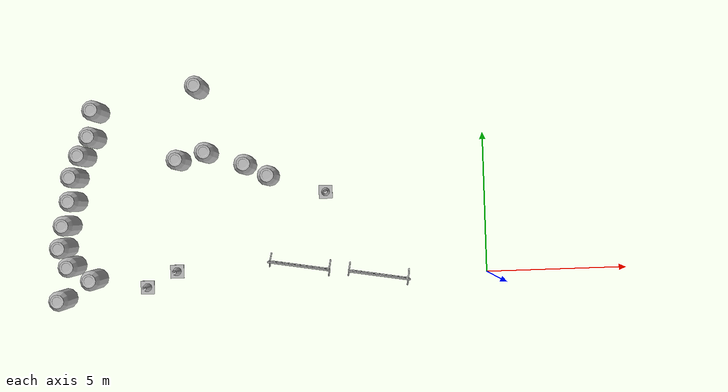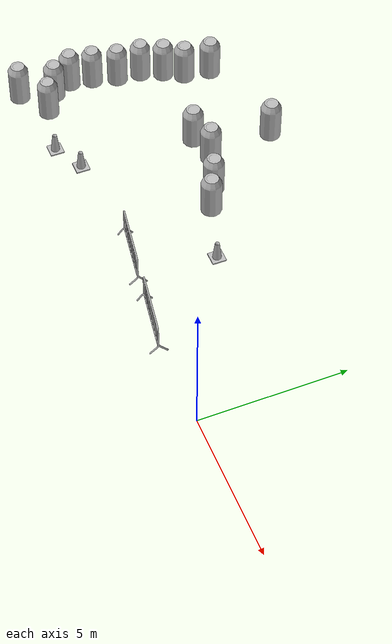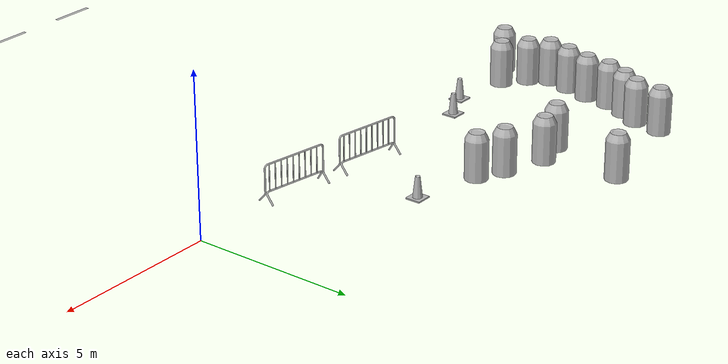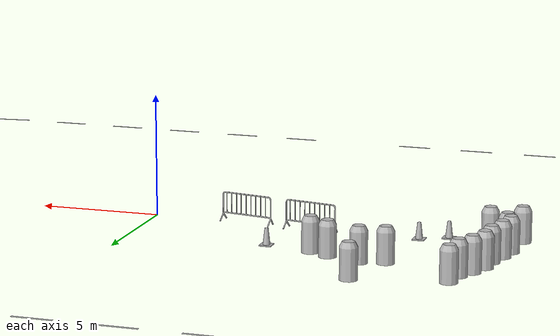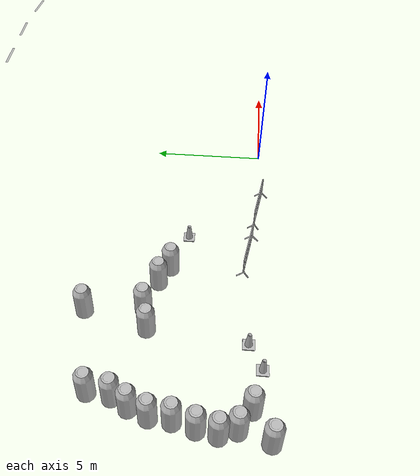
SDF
<sdf version="1.7">
 <world name="default">
  <model name="aws_robomaker_racetrack_CrashworthBucket_01_00">
   <frame name="aws_CrashworthBucket_01::__model__" attached_to="aws_CrashworthBucket_01::body">
    <pose relative_to="__model__">0 0 0 0 -0 0</pose>
   </frame>
   <link name="aws_CrashworthBucket_01::body">
    <pose relative_to="aws_CrashworthBucket_01::__model__">0 0 0 0 -0 0</pose>
    <inertial>
     <mass>5</mass>
     <inertia><ixx>1</ixx><ixy>0</ixy><ixz>0</ixz><iyy>1</iyy><iyz>0</iyz><izz>1</izz></inertia>
    </inertial>
    <visual name="visual">
     <geometry>
      <mesh>
       <uri>file://models/aws_robomaker_racetrack_CrashworthBucket_01/meshes/aws_CrashworthBucket_01_visual.DAE</uri>
      </mesh>
     </geometry>
     <material><shader type="pixel"><normal_map>__default__</normal_map></shader></material>
     <meta><layer>0</layer></meta>
    </visual>
    <collision name="collision_0">
     <geometry>
      <mesh>
       <uri>file://models/aws_robomaker_racetrack_CrashworthBucket_01/meshes/aws_CrashworthBucket_01_collision.DAE</uri>
       <scale>1 1 1</scale>
      </mesh>
     </geometry>
     <surface>
      <friction>
       <ode><mu>1</mu><mu2>1</mu2><fdir1>0 0 0</fdir1><slip1>0</slip1><slip2>0</slip2></ode>
       <torsional>
        <coefficient>1</coefficient>
        <patch_radius>0</patch_radius>
        <surface_radius>0</surface_radius>
        <use_patch_radius>1</use_patch_radius>
        <ode><slip>0</slip></ode>
       </torsional>
      </friction>
      <bounce><restitution_coefficient>0</restitution_coefficient><threshold>1e+06</threshold></bounce>
      <contact>
       <collide_without_contact>0</collide_without_contact>
       <collide_without_contact_bitmask>1</collide_without_contact_bitmask>
       <collide_bitmask>1</collide_bitmask>
       <ode>
        <soft_cfm>0</soft_cfm>
        <soft_erp>0.2</soft_erp>
        <kp>1e+13</kp>
        <kd>1</kd>
        <max_vel>0.01</max_vel>
        <min_depth>0</min_depth>
       </ode>
       <bullet>
        <split_impulse>1</split_impulse>
        <split_impulse_penetration_threshold>-0.01</split_impulse_penetration_threshold>
        <soft_cfm>0</soft_cfm>
        <soft_erp>0.2</soft_erp>
        <kp>1e+13</kp>
        <kd>1</kd>
       </bullet>
      </contact>
     </surface>
    </collision>
   </link>
   <static>1</static>
   <pose>-8.47522 4.09403 0.054 0 -0 0</pose>
  </model>
  <model name="aws_robomaker_racetrack_CrashworthBucket_01_01">
   <frame name="aws_CrashworthBucket_01::__model__" attached_to="aws_CrashworthBucket_01::body">
    <pose relative_to="__model__">0 0 0 0 -0 0</pose>
   </frame>
   <link name="aws_CrashworthBucket_01::body">
    <pose relative_to="aws_CrashworthBucket_01::__model__">0 0 0 0 -0 0</pose>
    <inertial>
     <mass>5</mass>
     <inertia><ixx>1</ixx><ixy>0</ixy><ixz>0</ixz><iyy>1</iyy><iyz>0</iyz><izz>1</izz></inertia>
    </inertial>
    <visual name="visual">
     <geometry>
      <mesh>
       <uri>file://models/aws_robomaker_racetrack_CrashworthBucket_01/meshes/aws_CrashworthBucket_01_visual.DAE</uri>
      </mesh>
     </geometry>
     <material><shader type="pixel"><normal_map>__default__</normal_map></shader></material>
     <meta><layer>0</layer></meta>
    </visual>
    <collision name="collision_0">
     <geometry>
      <mesh>
       <uri>file://models/aws_robomaker_racetrack_CrashworthBucket_01/meshes/aws_CrashworthBucket_01_collision.DAE</uri>
       <scale>1 1 1</scale>
      </mesh>
     </geometry>
     <surface>
      <friction>
       <ode><mu>1</mu><mu2>1</mu2><fdir1>0 0 0</fdir1><slip1>0</slip1><slip2>0</slip2></ode>
       <torsional>
        <coefficient>1</coefficient>
        <patch_radius>0</patch_radius>
        <surface_radius>0</surface_radius>
        <use_patch_radius>1</use_patch_radius>
        <ode><slip>0</slip></ode>
       </torsional>
      </friction>
      <bounce><restitution_coefficient>0</restitution_coefficient><threshold>1e+06</threshold></bounce>
      <contact>
       <collide_without_contact>0</collide_without_contact>
       <collide_without_contact_bitmask>1</collide_without_contact_bitmask>
       <collide_bitmask>1</collide_bitmask>
       <ode>
        <soft_cfm>0</soft_cfm>
        <soft_erp>0.2</soft_erp>
        <kp>1e+13</kp>
        <kd>1</kd>
        <max_vel>0.01</max_vel>
        <min_depth>0</min_depth>
       </ode>
       <bullet>
        <split_impulse>1</split_impulse>
        <split_impulse_penetration_threshold>-0.01</split_impulse_penetration_threshold>
        <soft_cfm>0</soft_cfm>
        <soft_erp>0.2</soft_erp>
        <kp>1e+13</kp>
        <kd>1</kd>
       </bullet>
      </contact>
     </surface>
    </collision>
   </link>
   <static>1</static>
   <pose>-7.67012 3.67698 0.054 0 -0 0</pose>
  </model>
  <model name="aws_robomaker_racetrack_CrashworthBucket_01_03">
   <frame name="aws_CrashworthBucket_01::__model__" attached_to="aws_CrashworthBucket_01::body">
    <pose relative_to="__model__">0 0 0 0 -0 0</pose>
   </frame>
   <link name="aws_CrashworthBucket_01::body">
    <pose relative_to="aws_CrashworthBucket_01::__model__">0 0 0 0 -0 0</pose>
    <inertial>
     <mass>5</mass>
     <inertia><ixx>1</ixx><ixy>0</ixy><ixz>0</ixz><iyy>1</iyy><iyz>0</iyz><izz>1</izz></inertia>
    </inertial>
    <visual name="visual">
     <geometry>
      <mesh>
       <uri>file://models/aws_robomaker_racetrack_CrashworthBucket_01/meshes/aws_CrashworthBucket_01_visual.DAE</uri>
      </mesh>
     </geometry>
     <material><shader type="pixel"><normal_map>__default__</normal_map></shader></material>
     <meta><layer>0</layer></meta>
    </visual>
    <collision name="collision_0">
     <geometry>
      <mesh>
       <uri>file://models/aws_robomaker_racetrack_CrashworthBucket_01/meshes/aws_CrashworthBucket_01_collision.DAE</uri>
       <scale>1 1 1</scale>
      </mesh>
     </geometry>
     <surface>
      <friction>
       <ode><mu>1</mu><mu2>1</mu2><fdir1>0 0 0</fdir1><slip1>0</slip1><slip2>0</slip2></ode>
       <torsional>
        <coefficient>1</coefficient>
        <patch_radius>0</patch_radius>
        <surface_radius>0</surface_radius>
        <use_patch_radius>1</use_patch_radius>
        <ode><slip>0</slip></ode>
       </torsional>
      </friction>
      <bounce><restitution_coefficient>0</restitution_coefficient><threshold>1e+06</threshold></bounce>
      <contact>
       <collide_without_contact>0</collide_without_contact>
       <collide_without_contact_bitmask>1</collide_without_contact_bitmask>
       <collide_bitmask>1</collide_bitmask>
       <ode>
        <soft_cfm>0</soft_cfm>
        <soft_erp>0.2</soft_erp>
        <kp>1e+13</kp>
        <kd>1</kd>
        <max_vel>0.01</max_vel>
        <min_depth>0</min_depth>
       </ode>
       <bullet>
        <split_impulse>1</split_impulse>
        <split_impulse_penetration_threshold>-0.01</split_impulse_penetration_threshold>
        <soft_cfm>0</soft_cfm>
        <soft_erp>0.2</soft_erp>
        <kp>1e+13</kp>
        <kd>1</kd>
       </bullet>
      </contact>
     </surface>
    </collision>
   </link>
   <static>1</static>
   <pose>-13.6938 6.13266 0.054 0 -0 0</pose>
  </model>
  <model name="aws_robomaker_racetrack_CrashworthBucket_01_24">
   <frame name="aws_CrashworthBucket_01::__model__" attached_to="aws_CrashworthBucket_01::body">
    <pose relative_to="__model__">0 0 0 0 -0 0</pose>
   </frame>
   <link name="aws_CrashworthBucket_01::body">
    <pose relative_to="aws_CrashworthBucket_01::__model__">0 0 0 0 -0 0</pose>
    <inertial>
     <mass>5</mass>
     <inertia><ixx>1</ixx><ixy>0</ixy><ixz>0</ixz><iyy>1</iyy><iyz>0</iyz><izz>1</izz></inertia>
    </inertial>
    <visual name="visual">
     <geometry>
      <mesh>
       <uri>file://models/aws_robomaker_racetrack_CrashworthBucket_01/meshes/aws_CrashworthBucket_01_visual.DAE</uri>
      </mesh>
     </geometry>
     <material><shader type="pixel"><normal_map>__default__</normal_map></shader></material>
     <meta><layer>0</layer></meta>
    </visual>
    <collision name="collision_0">
     <geometry>
      <mesh>
       <uri>file://models/aws_robomaker_racetrack_CrashworthBucket_01/meshes/aws_CrashworthBucket_01_collision.DAE</uri>
       <scale>1 1 1</scale>
      </mesh>
     </geometry>
     <surface>
      <friction>
       <ode><mu>1</mu><mu2>1</mu2><fdir1>0 0 0</fdir1><slip1>0</slip1><slip2>0</slip2></ode>
       <torsional>
        <coefficient>1</coefficient>
        <patch_radius>0</patch_radius>
        <surface_radius>0</surface_radius>
        <use_patch_radius>1</use_patch_radius>
        <ode><slip>0</slip></ode>
       </torsional>
      </friction>
      <bounce><restitution_coefficient>0</restitution_coefficient><threshold>1e+06</threshold></bounce>
      <contact>
       <collide_without_contact>0</collide_without_contact>
       <collide_without_contact_bitmask>1</collide_without_contact_bitmask>
       <collide_bitmask>1</collide_bitmask>
       <ode>
        <soft_cfm>0</soft_cfm>
        <soft_erp>0.2</soft_erp>
        <kp>1e+13</kp>
        <kd>1</kd>
        <max_vel>0.01</max_vel>
        <min_depth>0</min_depth>
       </ode>
       <bullet>
        <split_impulse>1</split_impulse>
        <split_impulse_penetration_threshold>-0.01</split_impulse_penetration_threshold>
        <soft_cfm>0</soft_cfm>
        <soft_erp>0.2</soft_erp>
        <kp>1e+13</kp>
        <kd>1</kd>
       </bullet>
      </contact>
     </surface>
    </collision>
   </link>
   <static>1</static>
   <pose>-15.0558 -0.45872 0 0 -0 0</pose>
  </model>
  <model name="aws_robomaker_racetrack_CrashworthBucket_01_44">
   <frame name="aws_CrashworthBucket_01::__model__" attached_to="aws_CrashworthBucket_01::body">
    <pose relative_to="__model__">0 0 0 0 -0 0</pose>
   </frame>
   <link name="aws_CrashworthBucket_01::body">
    <pose relative_to="aws_CrashworthBucket_01::__model__">0 0 0 0 -0 0</pose>
    <inertial>
     <mass>5</mass>
     <inertia><ixx>1</ixx><ixy>0</ixy><ixz>0</ixz><iyy>1</iyy><iyz>0</iyz><izz>1</izz></inertia>
    </inertial>
    <visual name="visual">
     <geometry>
      <mesh>
       <uri>file://models/aws_robomaker_racetrack_CrashworthBucket_01/meshes/aws_CrashworthBucket_01_visual.DAE</uri>
      </mesh>
     </geometry>
     <material><shader type="pixel"><normal_map>__default__</normal_map></shader></material>
     <meta><layer>0</layer></meta>
    </visual>
    <collision name="collision_0">
     <geometry>
      <mesh>
       <uri>file://models/aws_robomaker_racetrack_CrashworthBucket_01/meshes/aws_CrashworthBucket_01_collision.DAE</uri>
       <scale>1 1 1</scale>
      </mesh>
     </geometry>
     <surface>
      <friction>
       <ode><mu>1</mu><mu2>1</mu2><fdir1>0 0 0</fdir1><slip1>0</slip1><slip2>0</slip2></ode>
       <torsional>
        <coefficient>1</coefficient>
        <patch_radius>0</patch_radius>
        <surface_radius>0</surface_radius>
        <use_patch_radius>1</use_patch_radius>
        <ode><slip>0</slip></ode>
       </torsional>
      </friction>
      <bounce><restitution_coefficient>0</restitution_coefficient><threshold>1e+06</threshold></bounce>
      <contact>
       <collide_without_contact>0</collide_without_contact>
       <collide_without_contact_bitmask>1</collide_without_contact_bitmask>
       <collide_bitmask>1</collide_bitmask>
       <ode>
        <soft_cfm>0</soft_cfm>
        <soft_erp>0.2</soft_erp>
        <kp>1e+13</kp>
        <kd>1</kd>
        <max_vel>0.01</max_vel>
        <min_depth>0</min_depth>
       </ode>
       <bullet>
        <split_impulse>1</split_impulse>
        <split_impulse_penetration_threshold>-0.01</split_impulse_penetration_threshold>
        <soft_cfm>0</soft_cfm>
        <soft_erp>0.2</soft_erp>
        <kp>1e+13</kp>
        <kd>1</kd>
       </bullet>
      </contact>
     </surface>
    </collision>
   </link>
   <static>1</static>
   <pose>-13.8311 5.21601 0.054 0 -0 0</pose>
  </model>
  <model name="aws_robomaker_racetrack_CrashworthBucket_01_51">
   <frame name="aws_CrashworthBucket_01::__model__" attached_to="aws_CrashworthBucket_01::body">
    <pose relative_to="__model__">0 0 0 0 -0 0</pose>
   </frame>
   <link name="aws_CrashworthBucket_01::body">
    <pose relative_to="aws_CrashworthBucket_01::__model__">0 0 0 0 -0 0</pose>
    <inertial>
     <mass>5</mass>
     <inertia><ixx>1</ixx><ixy>0</ixy><ixz>0</ixz><iyy>1</iyy><iyz>0</iyz><izz>1</izz></inertia>
    </inertial>
    <visual name="visual">
     <geometry>
      <mesh>
       <uri>file://models/aws_robomaker_racetrack_CrashworthBucket_01/meshes/aws_CrashworthBucket_01_visual.DAE</uri>
      </mesh>
     </geometry>
     <material><shader type="pixel"><normal_map>__default__</normal_map></shader></material>
     <meta><layer>0</layer></meta>
    </visual>
    <collision name="collision_0">
     <geometry>
      <mesh>
       <uri>file://models/aws_robomaker_racetrack_CrashworthBucket_01/meshes/aws_CrashworthBucket_01_collision.DAE</uri>
       <scale>1 1 1</scale>
      </mesh>
     </geometry>
     <surface>
      <friction>
       <ode><mu>1</mu><mu2>1</mu2><fdir1>0 0 0</fdir1><slip1>0</slip1><slip2>0</slip2></ode>
       <torsional>
        <coefficient>1</coefficient>
        <patch_radius>0</patch_radius>
        <surface_radius>0</surface_radius>
        <use_patch_radius>1</use_patch_radius>
        <ode><slip>0</slip></ode>
       </torsional>
      </friction>
      <bounce><restitution_coefficient>0</restitution_coefficient><threshold>1e+06</threshold></bounce>
      <contact>
       <collide_without_contact>0</collide_without_contact>
       <collide_without_contact_bitmask>1</collide_without_contact_bitmask>
       <collide_bitmask>1</collide_bitmask>
       <ode>
        <soft_cfm>0</soft_cfm>
        <soft_erp>0.2</soft_erp>
        <kp>1e+13</kp>
        <kd>1</kd>
        <max_vel>0.01</max_vel>
        <min_depth>0</min_depth>
       </ode>
       <bullet>
        <split_impulse>1</split_impulse>
        <split_impulse_penetration_threshold>-0.01</split_impulse_penetration_threshold>
        <soft_cfm>0</soft_cfm>
        <soft_erp>0.2</soft_erp>
        <kp>1e+13</kp>
        <kd>1</kd>
       </bullet>
      </contact>
     </surface>
    </collision>
   </link>
   <static>1</static>
   <pose>-9.83411 4.55632 0.054 0 -0 0</pose>
  </model>
  <model name="aws_robomaker_racetrack_CrashworthBucket_01_52">
   <frame name="aws_CrashworthBucket_01::__model__" attached_to="aws_CrashworthBucket_01::body">
    <pose relative_to="__model__">0 0 0 0 -0 0</pose>
   </frame>
   <link name="aws_CrashworthBucket_01::body">
    <pose relative_to="aws_CrashworthBucket_01::__model__">0 0 0 0 -0 0</pose>
    <inertial>
     <mass>5</mass>
     <inertia><ixx>1</ixx><ixy>0</ixy><ixz>0</ixz><iyy>1</iyy><iyz>0</iyz><izz>1</izz></inertia>
    </inertial>
    <visual name="visual">
     <geometry>
      <mesh>
       <uri>file://models/aws_robomaker_racetrack_CrashworthBucket_01/meshes/aws_CrashworthBucket_01_visual.DAE</uri>
      </mesh>
     </geometry>
     <material><shader type="pixel"><normal_map>__default__</normal_map></shader></material>
     <meta><layer>0</layer></meta>
    </visual>
    <collision name="collision_0">
     <geometry>
      <mesh>
       <uri>file://models/aws_robomaker_racetrack_CrashworthBucket_01/meshes/aws_CrashworthBucket_01_collision.DAE</uri>
       <scale>1 1 1</scale>
      </mesh>
     </geometry>
     <surface>
      <friction>
       <ode><mu>1</mu><mu2>1</mu2><fdir1>0 0 0</fdir1><slip1>0</slip1><slip2>0</slip2></ode>
       <torsional>
        <coefficient>1</coefficient>
        <patch_radius>0</patch_radius>
        <surface_radius>0</surface_radius>
        <use_patch_radius>1</use_patch_radius>
        <ode><slip>0</slip></ode>
       </torsional>
      </friction>
      <bounce><restitution_coefficient>0</restitution_coefficient><threshold>1e+06</threshold></bounce>
      <contact>
       <collide_without_contact>0</collide_without_contact>
       <collide_without_contact_bitmask>1</collide_without_contact_bitmask>
       <collide_bitmask>1</collide_bitmask>
       <ode>
        <soft_cfm>0</soft_cfm>
        <soft_erp>0.2</soft_erp>
        <kp>1e+13</kp>
        <kd>1</kd>
        <max_vel>0.01</max_vel>
        <min_depth>0</min_depth>
       </ode>
       <bullet>
        <split_impulse>1</split_impulse>
        <split_impulse_penetration_threshold>-0.01</split_impulse_penetration_threshold>
        <soft_cfm>0</soft_cfm>
        <soft_erp>0.2</soft_erp>
        <kp>1e+13</kp>
        <kd>1</kd>
       </bullet>
      </contact>
     </surface>
    </collision>
   </link>
   <static>1</static>
   <pose>-10.8194 4.31922 0.054 0 -0 0</pose>
  </model>
  <model name="aws_robomaker_racetrack_CrashworthBucket_01_54">
   <frame name="aws_CrashworthBucket_01::__model__" attached_to="aws_CrashworthBucket_01::body">
    <pose relative_to="__model__">0 0 0 0 -0 0</pose>
   </frame>
   <link name="aws_CrashworthBucket_01::body">
    <pose relative_to="aws_CrashworthBucket_01::__model__">0 0 0 0 -0 0</pose>
    <inertial>
     <mass>5</mass>
     <inertia><ixx>1</ixx><ixy>0</ixy><ixz>0</ixz><iyy>1</iyy><iyz>0</iyz><izz>1</izz></inertia>
    </inertial>
    <visual name="visual">
     <geometry>
      <mesh>
       <uri>file://models/aws_robomaker_racetrack_CrashworthBucket_01/meshes/aws_CrashworthBucket_01_visual.DAE</uri>
      </mesh>
     </geometry>
     <material><shader type="pixel"><normal_map>__default__</normal_map></shader></material>
     <meta><layer>0</layer></meta>
    </visual>
    <collision name="collision_0">
     <geometry>
      <mesh>
       <uri>file://models/aws_robomaker_racetrack_CrashworthBucket_01/meshes/aws_CrashworthBucket_01_collision.DAE</uri>
       <scale>1 1 1</scale>
      </mesh>
     </geometry>
     <surface>
      <friction>
       <ode><mu>1</mu><mu2>1</mu2><fdir1>0 0 0</fdir1><slip1>0</slip1><slip2>0</slip2></ode>
       <torsional>
        <coefficient>1</coefficient>
        <patch_radius>0</patch_radius>
        <surface_radius>0</surface_radius>
        <use_patch_radius>1</use_patch_radius>
        <ode><slip>0</slip></ode>
       </torsional>
      </friction>
      <bounce><restitution_coefficient>0</restitution_coefficient><threshold>1e+06</threshold></bounce>
      <contact>
       <collide_without_contact>0</collide_without_contact>
       <collide_without_contact_bitmask>1</collide_without_contact_bitmask>
       <collide_bitmask>1</collide_bitmask>
       <ode>
        <soft_cfm>0</soft_cfm>
        <soft_erp>0.2</soft_erp>
        <kp>1e+13</kp>
        <kd>1</kd>
        <max_vel>0.01</max_vel>
        <min_depth>0</min_depth>
       </ode>
       <bullet>
        <split_impulse>1</split_impulse>
        <split_impulse_penetration_threshold>-0.01</split_impulse_penetration_threshold>
        <soft_cfm>0</soft_cfm>
        <soft_erp>0.2</soft_erp>
        <kp>1e+13</kp>
        <kd>1</kd>
       </bullet>
      </contact>
     </surface>
    </collision>
   </link>
   <static>1</static>
   <pose>-10.1026 6.87186 0.054 0 -0 0</pose>
  </model>
  <model name="aws_robomaker_racetrack_CrashworthBucket_01_56">
   <frame name="aws_CrashworthBucket_01::__model__" attached_to="aws_CrashworthBucket_01::body">
    <pose relative_to="__model__">0 0 0 0 -0 0</pose>
   </frame>
   <link name="aws_CrashworthBucket_01::body">
    <pose relative_to="aws_CrashworthBucket_01::__model__">0 0 0 0 -0 0</pose>
    <inertial>
     <mass>5</mass>
     <inertia><ixx>1</ixx><ixy>0</ixy><ixz>0</ixz><iyy>1</iyy><iyz>0</iyz><izz>1</izz></inertia>
    </inertial>
    <visual name="visual">
     <geometry>
      <mesh>
       <uri>file://models/aws_robomaker_racetrack_CrashworthBucket_01/meshes/aws_CrashworthBucket_01_visual.DAE</uri>
      </mesh>
     </geometry>
     <material><shader type="pixel"><normal_map>__default__</normal_map></shader></material>
     <meta><layer>0</layer></meta>
    </visual>
    <collision name="collision_0">
     <geometry>
      <mesh>
       <uri>file://models/aws_robomaker_racetrack_CrashworthBucket_01/meshes/aws_CrashworthBucket_01_collision.DAE</uri>
       <scale>1 1 1</scale>
      </mesh>
     </geometry>
     <surface>
      <friction>
       <ode><mu>1</mu><mu2>1</mu2><fdir1>0 0 0</fdir1><slip1>0</slip1><slip2>0</slip2></ode>
       <torsional>
        <coefficient>1</coefficient>
        <patch_radius>0</patch_radius>
        <surface_radius>0</surface_radius>
        <use_patch_radius>1</use_patch_radius>
        <ode><slip>0</slip></ode>
       </torsional>
      </friction>
      <bounce><restitution_coefficient>0</restitution_coefficient><threshold>1e+06</threshold></bounce>
      <contact>
       <collide_without_contact>0</collide_without_contact>
       <collide_without_contact_bitmask>1</collide_without_contact_bitmask>
       <collide_bitmask>1</collide_bitmask>
       <ode>
        <soft_cfm>0</soft_cfm>
        <soft_erp>0.2</soft_erp>
        <kp>1e+13</kp>
        <kd>1</kd>
        <max_vel>0.01</max_vel>
        <min_depth>0</min_depth>
       </ode>
       <bullet>
        <split_impulse>1</split_impulse>
        <split_impulse_penetration_threshold>-0.01</split_impulse_penetration_threshold>
        <soft_cfm>0</soft_cfm>
        <soft_erp>0.2</soft_erp>
        <kp>1e+13</kp>
        <kd>1</kd>
       </bullet>
      </contact>
     </surface>
    </collision>
   </link>
   <static>1</static>
   <pose>-13.9209 0.216601 0.054 0 -0 0</pose>
  </model>
  <model name="aws_robomaker_racetrack_CrashworthBucket_01_60">
   <frame name="aws_CrashworthBucket_01::__model__" attached_to="aws_CrashworthBucket_01::body">
    <pose relative_to="__model__">0 0 0 0 -0 0</pose>
   </frame>
   <link name="aws_CrashworthBucket_01::body">
    <pose relative_to="aws_CrashworthBucket_01::__model__">0 0 0 0 -0 0</pose>
    <inertial>
     <mass>5</mass>
     <inertia><ixx>1</ixx><ixy>0</ixy><ixz>0</ixz><iyy>1</iyy><iyz>0</iyz><izz>1</izz></inertia>
    </inertial>
    <visual name="visual">
     <geometry>
      <mesh>
       <uri>file://models/aws_robomaker_racetrack_CrashworthBucket_01/meshes/aws_CrashworthBucket_01_visual.DAE</uri>
      </mesh>
     </geometry>
     <material><shader type="pixel"><normal_map>__default__</normal_map></shader></material>
     <meta><layer>0</layer></meta>
    </visual>
    <collision name="collision_0">
     <geometry>
      <mesh>
       <uri>file://models/aws_robomaker_racetrack_CrashworthBucket_01/meshes/aws_CrashworthBucket_01_collision.DAE</uri>
       <scale>1 1 1</scale>
      </mesh>
     </geometry>
     <surface>
      <friction>
       <ode><mu>1</mu><mu2>1</mu2><fdir1>0 0 0</fdir1><slip1>0</slip1><slip2>0</slip2></ode>
       <torsional>
        <coefficient>1</coefficient>
        <patch_radius>0</patch_radius>
        <surface_radius>0</surface_radius>
        <use_patch_radius>1</use_patch_radius>
        <ode><slip>0</slip></ode>
       </torsional>
      </friction>
      <bounce><restitution_coefficient>0</restitution_coefficient><threshold>1e+06</threshold></bounce>
      <contact>
       <collide_without_contact>0</collide_without_contact>
       <collide_without_contact_bitmask>1</collide_without_contact_bitmask>
       <collide_bitmask>1</collide_bitmask>
       <ode>
        <soft_cfm>0</soft_cfm>
        <soft_erp>0.2</soft_erp>
        <kp>1e+13</kp>
        <kd>1</kd>
        <max_vel>0.01</max_vel>
        <min_depth>0</min_depth>
       </ode>
       <bullet>
        <split_impulse>1</split_impulse>
        <split_impulse_penetration_threshold>-0.01</split_impulse_penetration_threshold>
        <soft_cfm>0</soft_cfm>
        <soft_erp>0.2</soft_erp>
        <kp>1e+13</kp>
        <kd>1</kd>
       </bullet>
      </contact>
     </surface>
    </collision>
   </link>
   <static>1</static>
   <pose>-14.6963 0.705029 0 0 -0 0.00632</pose>
  </model>
  <model name="aws_robomaker_racetrack_CrashworthBucket_01_61">
   <frame name="aws_CrashworthBucket_01::__model__" attached_to="aws_CrashworthBucket_01::body">
    <pose relative_to="__model__">0 0 0 0 -0 0</pose>
   </frame>
   <link name="aws_CrashworthBucket_01::body">
    <pose relative_to="aws_CrashworthBucket_01::__model__">0 0 0 0 -0 0</pose>
    <inertial>
     <mass>5</mass>
     <inertia><ixx>1</ixx><ixy>0</ixy><ixz>0</ixz><iyy>1</iyy><iyz>0</iyz><izz>1</izz></inertia>
    </inertial>
    <visual name="visual">
     <geometry>
      <mesh>
       <uri>file://models/aws_robomaker_racetrack_CrashworthBucket_01/meshes/aws_CrashworthBucket_01_visual.DAE</uri>
      </mesh>
     </geometry>
     <material><shader type="pixel"><normal_map>__default__</normal_map></shader></material>
     <meta><layer>0</layer></meta>
    </visual>
    <collision name="collision_0">
     <geometry>
      <mesh>
       <uri>file://models/aws_robomaker_racetrack_CrashworthBucket_01/meshes/aws_CrashworthBucket_01_collision.DAE</uri>
       <scale>1 1 1</scale>
      </mesh>
     </geometry>
     <surface>
      <friction>
       <ode><mu>1</mu><mu2>1</mu2><fdir1>0 0 0</fdir1><slip1>0</slip1><slip2>0</slip2></ode>
       <torsional>
        <coefficient>1</coefficient>
        <patch_radius>0</patch_radius>
        <surface_radius>0</surface_radius>
        <use_patch_radius>1</use_patch_radius>
        <ode><slip>0</slip></ode>
       </torsional>
      </friction>
      <bounce><restitution_coefficient>0</restitution_coefficient><threshold>1e+06</threshold></bounce>
      <contact>
       <collide_without_contact>0</collide_without_contact>
       <collide_without_contact_bitmask>1</collide_without_contact_bitmask>
       <collide_bitmask>1</collide_bitmask>
       <ode>
        <soft_cfm>0</soft_cfm>
        <soft_erp>0.2</soft_erp>
        <kp>1e+13</kp>
        <kd>1</kd>
        <max_vel>0.01</max_vel>
        <min_depth>0</min_depth>
       </ode>
       <bullet>
        <split_impulse>1</split_impulse>
        <split_impulse_penetration_threshold>-0.01</split_impulse_penetration_threshold>
        <soft_cfm>0</soft_cfm>
        <soft_erp>0.2</soft_erp>
        <kp>1e+13</kp>
        <kd>1</kd>
       </bullet>
      </contact>
     </surface>
    </collision>
   </link>
   <static>1</static>
   <pose>-14.205 4.57376 0.054 0 -0 0</pose>
  </model>
  <model name="aws_robomaker_racetrack_CrashworthBucket_01_62">
   <frame name="aws_CrashworthBucket_01::__model__" attached_to="aws_CrashworthBucket_01::body">
    <pose relative_to="__model__">0 0 0 0 -0 0</pose>
   </frame>
   <link name="aws_CrashworthBucket_01::body">
    <pose relative_to="aws_CrashworthBucket_01::__model__">0 0 0 0 -0 0</pose>
    <inertial>
     <mass>5</mass>
     <inertia><ixx>1</ixx><ixy>0</ixy><ixz>0</ixz><iyy>1</iyy><iyz>0</iyz><izz>1</izz></inertia>
    </inertial>
    <visual name="visual">
     <geometry>
      <mesh>
       <uri>file://models/aws_robomaker_racetrack_CrashworthBucket_01/meshes/aws_CrashworthBucket_01_visual.DAE</uri>
      </mesh>
     </geometry>
     <material><shader type="pixel"><normal_map>__default__</normal_map></shader></material>
     <meta><layer>0</layer></meta>
    </visual>
    <collision name="collision_0">
     <geometry>
      <mesh>
       <uri>file://models/aws_robomaker_racetrack_CrashworthBucket_01/meshes/aws_CrashworthBucket_01_collision.DAE</uri>
       <scale>1 1 1</scale>
      </mesh>
     </geometry>
     <surface>
      <friction>
       <ode><mu>1</mu><mu2>1</mu2><fdir1>0 0 0</fdir1><slip1>0</slip1><slip2>0</slip2></ode>
       <torsional>
        <coefficient>1</coefficient>
        <patch_radius>0</patch_radius>
        <surface_radius>0</surface_radius>
        <use_patch_radius>1</use_patch_radius>
        <ode><slip>0</slip></ode>
       </torsional>
      </friction>
      <bounce><restitution_coefficient>0</restitution_coefficient><threshold>1e+06</threshold></bounce>
      <contact>
       <collide_without_contact>0</collide_without_contact>
       <collide_without_contact_bitmask>1</collide_without_contact_bitmask>
       <collide_bitmask>1</collide_bitmask>
       <ode>
        <soft_cfm>0</soft_cfm>
        <soft_erp>0.2</soft_erp>
        <kp>1e+13</kp>
        <kd>1</kd>
        <max_vel>0.01</max_vel>
        <min_depth>0</min_depth>
       </ode>
       <bullet>
        <split_impulse>1</split_impulse>
        <split_impulse_penetration_threshold>-0.01</split_impulse_penetration_threshold>
        <soft_cfm>0</soft_cfm>
        <soft_erp>0.2</soft_erp>
        <kp>1e+13</kp>
        <kd>1</kd>
       </bullet>
      </contact>
     </surface>
    </collision>
   </link>
   <static>1</static>
   <pose>-14.8093 2.14739 0.054 0 -0 0</pose>
  </model>
  <model name="aws_robomaker_racetrack_CrashworthBucket_01_63">
   <frame name="aws_CrashworthBucket_01::__model__" attached_to="aws_CrashworthBucket_01::body">
    <pose relative_to="__model__">0 0 0 0 -0 0</pose>
   </frame>
   <link name="aws_CrashworthBucket_01::body">
    <pose relative_to="aws_CrashworthBucket_01::__model__">0 0 0 0 -0 0</pose>
    <inertial>
     <mass>5</mass>
     <inertia><ixx>1</ixx><ixy>0</ixy><ixz>0</ixz><iyy>1</iyy><iyz>0</iyz><izz>1</izz></inertia>
    </inertial>
    <visual name="visual">
     <geometry>
      <mesh>
       <uri>file://models/aws_robomaker_racetrack_CrashworthBucket_01/meshes/aws_CrashworthBucket_01_visual.DAE</uri>
      </mesh>
     </geometry>
     <material><shader type="pixel"><normal_map>__default__</normal_map></shader></material>
     <meta><layer>0</layer></meta>
    </visual>
    <collision name="collision_0">
     <geometry>
      <mesh>
       <uri>file://models/aws_robomaker_racetrack_CrashworthBucket_01/meshes/aws_CrashworthBucket_01_collision.DAE</uri>
       <scale>1 1 1</scale>
      </mesh>
     </geometry>
     <surface>
      <friction>
       <ode><mu>1</mu><mu2>1</mu2><fdir1>0 0 0</fdir1><slip1>0</slip1><slip2>0</slip2></ode>
       <torsional>
        <coefficient>1</coefficient>
        <patch_radius>0</patch_radius>
        <surface_radius>0</surface_radius>
        <use_patch_radius>1</use_patch_radius>
        <ode><slip>0</slip></ode>
       </torsional>
      </friction>
      <bounce><restitution_coefficient>0</restitution_coefficient><threshold>1e+06</threshold></bounce>
      <contact>
       <collide_without_contact>0</collide_without_contact>
       <collide_without_contact_bitmask>1</collide_without_contact_bitmask>
       <collide_bitmask>1</collide_bitmask>
       <ode>
        <soft_cfm>0</soft_cfm>
        <soft_erp>0.2</soft_erp>
        <kp>1e+13</kp>
        <kd>1</kd>
        <max_vel>0.01</max_vel>
        <min_depth>0</min_depth>
       </ode>
       <bullet>
        <split_impulse>1</split_impulse>
        <split_impulse_penetration_threshold>-0.01</split_impulse_penetration_threshold>
        <soft_cfm>0</soft_cfm>
        <soft_erp>0.2</soft_erp>
        <kp>1e+13</kp>
        <kd>1</kd>
       </bullet>
      </contact>
     </surface>
    </collision>
   </link>
   <static>1</static>
   <pose>-14.964 1.3691 0.054 0 -0 0.003001</pose>
  </model>
  <model name="aws_robomaker_racetrack_CrashworthBucket_01_64">
   <frame name="aws_CrashworthBucket_01::__model__" attached_to="aws_CrashworthBucket_01::body">
    <pose relative_to="__model__">0 0 0 0 -0 0</pose>
   </frame>
   <link name="aws_CrashworthBucket_01::body">
    <pose relative_to="aws_CrashworthBucket_01::__model__">0 0 0 0 -0 0</pose>
    <inertial>
     <mass>5</mass>
     <inertia><ixx>1</ixx><ixy>0</ixy><ixz>0</ixz><iyy>1</iyy><iyz>0</iyz><izz>1</izz></inertia>
    </inertial>
    <visual name="visual">
     <geometry>
      <mesh>
       <uri>file://models/aws_robomaker_racetrack_CrashworthBucket_01/meshes/aws_CrashworthBucket_01_visual.DAE</uri>
      </mesh>
     </geometry>
     <material><shader type="pixel"><normal_map>__default__</normal_map></shader></material>
     <meta><layer>0</layer></meta>
    </visual>
    <collision name="collision_0">
     <geometry>
      <mesh>
       <uri>file://models/aws_robomaker_racetrack_CrashworthBucket_01/meshes/aws_CrashworthBucket_01_collision.DAE</uri>
       <scale>1 1 1</scale>
      </mesh>
     </geometry>
     <surface>
      <friction>
       <ode><mu>1</mu><mu2>1</mu2><fdir1>0 0 0</fdir1><slip1>0</slip1><slip2>0</slip2></ode>
       <torsional>
        <coefficient>1</coefficient>
        <patch_radius>0</patch_radius>
        <surface_radius>0</surface_radius>
        <use_patch_radius>1</use_patch_radius>
        <ode><slip>0</slip></ode>
       </torsional>
      </friction>
      <bounce><restitution_coefficient>0</restitution_coefficient><threshold>1e+06</threshold></bounce>
      <contact>
       <collide_without_contact>0</collide_without_contact>
       <collide_without_contact_bitmask>1</collide_without_contact_bitmask>
       <collide_bitmask>1</collide_bitmask>
       <ode>
        <soft_cfm>0</soft_cfm>
        <soft_erp>0.2</soft_erp>
        <kp>1e+13</kp>
        <kd>1</kd>
        <max_vel>0.01</max_vel>
        <min_depth>0</min_depth>
       </ode>
       <bullet>
        <split_impulse>1</split_impulse>
        <split_impulse_penetration_threshold>-0.01</split_impulse_penetration_threshold>
        <soft_cfm>0</soft_cfm>
        <soft_erp>0.2</soft_erp>
        <kp>1e+13</kp>
        <kd>1</kd>
       </bullet>
      </contact>
     </surface>
    </collision>
   </link>
   <static>1</static>
   <pose>-14.5066 3.82709 0.054 0 0 -0.127634</pose>
  </model>
  <model name="aws_robomaker_racetrack_CrashworthBucket_01_65">
   <frame name="aws_CrashworthBucket_01::__model__" attached_to="aws_CrashworthBucket_01::body">
    <pose relative_to="__model__">0 0 0 0 -0 0</pose>
   </frame>
   <link name="aws_CrashworthBucket_01::body">
    <pose relative_to="aws_CrashworthBucket_01::__model__">0 0 0 0 -0 0</pose>
    <inertial>
     <mass>5</mass>
     <inertia><ixx>1</ixx><ixy>0</ixy><ixz>0</ixz><iyy>1</iyy><iyz>0</iyz><izz>1</izz></inertia>
    </inertial>
    <visual name="visual">
     <geometry>
      <mesh>
       <uri>file://models/aws_robomaker_racetrack_CrashworthBucket_01/meshes/aws_CrashworthBucket_01_visual.DAE</uri>
      </mesh>
     </geometry>
     <material><shader type="pixel"><normal_map>__default__</normal_map></shader></material>
     <meta><layer>0</layer></meta>
    </visual>
    <collision name="collision_0">
     <geometry>
      <mesh>
       <uri>file://models/aws_robomaker_racetrack_CrashworthBucket_01/meshes/aws_CrashworthBucket_01_collision.DAE</uri>
       <scale>1 1 1</scale>
      </mesh>
     </geometry>
     <surface>
      <friction>
       <ode><mu>1</mu><mu2>1</mu2><fdir1>0 0 0</fdir1><slip1>0</slip1><slip2>0</slip2></ode>
       <torsional>
        <coefficient>1</coefficient>
        <patch_radius>0</patch_radius>
        <surface_radius>0</surface_radius>
        <use_patch_radius>1</use_patch_radius>
        <ode><slip>0</slip></ode>
       </torsional>
      </friction>
      <bounce><restitution_coefficient>0</restitution_coefficient><threshold>1e+06</threshold></bounce>
      <contact>
       <collide_without_contact>0</collide_without_contact>
       <collide_without_contact_bitmask>1</collide_without_contact_bitmask>
       <collide_bitmask>1</collide_bitmask>
       <ode>
        <soft_cfm>0</soft_cfm>
        <soft_erp>0.2</soft_erp>
        <kp>1e+13</kp>
        <kd>1</kd>
        <max_vel>0.01</max_vel>
        <min_depth>0</min_depth>
       </ode>
       <bullet>
        <split_impulse>1</split_impulse>
        <split_impulse_penetration_threshold>-0.01</split_impulse_penetration_threshold>
        <soft_cfm>0</soft_cfm>
        <soft_erp>0.2</soft_erp>
        <kp>1e+13</kp>
        <kd>1</kd>
       </bullet>
      </contact>
     </surface>
    </collision>
   </link>
   <static>1</static>
   <pose>-14.5756 2.99063 0.054 0 -0 0</pose>
  </model>
  <model name="aws_robomaker_racetrack_Fence_02_02">
   <frame name="aws_Fence_02::__model__" attached_to="aws_Fence_02::body">
    <pose relative_to="__model__">0 0 0 0 -0 0</pose>
   </frame>
   <link name="aws_Fence_02::body">
    <pose relative_to="aws_Fence_02::__model__">0 0 0 0 -0 0</pose>
    <inertial>
     <mass>5</mass>
     <inertia><ixx>9.6</ixx><ixy>0</ixy><ixz>0</ixz><iyy>8.2</iyy><iyz>0</iyz><izz>2.1</izz></inertia>
    </inertial>
    <visual name="visual">
     <geometry>
      <mesh><uri>file://models/aws_robomaker_racetrack_Fence_02/meshes/aws_Fence_02_visual.DAE</uri></mesh>
     </geometry>
     <material><shader type="pixel"><normal_map>__default__</normal_map></shader></material>
     <meta><layer>0</layer></meta>
    </visual>
    <collision name="collision_0">
     <geometry>
      <mesh>
       <uri>file://models/aws_robomaker_racetrack_Fence_02/meshes/aws_Fence_02_collision.DAE</uri>
       <scale>1 1 1</scale>
      </mesh>
     </geometry>
     <surface>
      <friction>
       <ode><mu>1</mu><mu2>1</mu2><fdir1>0 0 0</fdir1><slip1>0</slip1><slip2>0</slip2></ode>
       <torsional>
        <coefficient>1</coefficient>
        <patch_radius>0</patch_radius>
        <surface_radius>0</surface_radius>
        <use_patch_radius>1</use_patch_radius>
        <ode><slip>0</slip></ode>
       </torsional>
      </friction>
      <bounce><restitution_coefficient>0</restitution_coefficient><threshold>1e+06</threshold></bounce>
      <contact>
       <collide_without_contact>0</collide_without_contact>
       <collide_without_contact_bitmask>1</collide_without_contact_bitmask>
       <collide_bitmask>1</collide_bitmask>
      </contact>
     </surface>
    </collision>
   </link>
   <static>1</static>
   <pose>-3.88076 0.08215 0 0 0 -1.73608</pose>
  </model>
  <model name="aws_robomaker_racetrack_Fence_02_03">
   <frame name="aws_Fence_02::__model__" attached_to="aws_Fence_02::body">
    <pose relative_to="__model__">0 0 0 0 -0 0</pose>
   </frame>
   <link name="aws_Fence_02::body">
    <pose relative_to="aws_Fence_02::__model__">0 0 0 0 -0 0</pose>
    <inertial>
     <mass>5</mass>
     <inertia><ixx>9.6</ixx><ixy>0</ixy><ixz>0</ixz><iyy>8.2</iyy><iyz>0</iyz><izz>2.1</izz></inertia>
    </inertial>
    <visual name="visual">
     <geometry>
      <mesh><uri>file://models/aws_robomaker_racetrack_Fence_02/meshes/aws_Fence_02_visual.DAE</uri></mesh>
     </geometry>
     <material><shader type="pixel"><normal_map>__default__</normal_map></shader></material>
     <meta><layer>0</layer></meta>
    </visual>
    <collision name="collision_0">
     <geometry>
      <mesh>
       <uri>file://models/aws_robomaker_racetrack_Fence_02/meshes/aws_Fence_02_collision.DAE</uri>
       <scale>1 1 1</scale>
      </mesh>
     </geometry>
     <surface>
      <friction>
       <ode><mu>1</mu><mu2>1</mu2><fdir1>0 0 0</fdir1><slip1>0</slip1><slip2>0</slip2></ode>
       <torsional>
        <coefficient>1</coefficient>
        <patch_radius>0</patch_radius>
        <surface_radius>0</surface_radius>
        <use_patch_radius>1</use_patch_radius>
        <ode><slip>0</slip></ode>
       </torsional>
      </friction>
      <bounce><restitution_coefficient>0</restitution_coefficient><threshold>1e+06</threshold></bounce>
      <contact>
       <collide_without_contact>0</collide_without_contact>
       <collide_without_contact_bitmask>1</collide_without_contact_bitmask>
       <collide_bitmask>1</collide_bitmask>
      </contact>
     </surface>
    </collision>
   </link>
   <static>1</static>
   <pose>-6.69129 0.495608 0 0 0 -1.73608</pose>
  </model>
  <model name="aws_robomaker_racetrack_Trackline_01_00">
   <frame name="aws_Trackline_01::__model__" attached_to="aws_Trackline_01::body">
    <pose relative_to="__model__">0 0 0 0 -0 0</pose>
   </frame>
   <link name="aws_Trackline_01::body">
    <pose relative_to="aws_Trackline_01::__model__">0 0 0 0 -0 0</pose>
    <inertial>
     <mass>0.5</mass>
     <inertia><ixx>1</ixx><ixy>0</ixy><ixz>0</ixz><iyy>1</iyy><iyz>0</iyz><izz>1</izz></inertia>
    </inertial>
    <visual name="visual">
     <geometry>
      <mesh><uri>file://models/aws_robomaker_racetrack_Trackline_01/meshes/aws_Trackline_01_visual.DAE</uri></mesh>
     </geometry>
     <material><shader type="pixel"><normal_map>__default__</normal_map></shader></material>
     <meta><layer>0</layer></meta>
    </visual>
    <collision name="collision_0">
     <geometry>
      <mesh>
       <uri>file://models/aws_robomaker_racetrack_Trackline_01/meshes/aws_Trackline_01_collision.DAE</uri>
       <scale>1 1 1</scale>
      </mesh>
     </geometry>
     <surface>
      <friction>
       <ode><mu>1</mu><mu2>1</mu2><fdir1>0 0 0</fdir1><slip1>0</slip1><slip2>0</slip2></ode>
       <torsional>
        <coefficient>1</coefficient>
        <patch_radius>0</patch_radius>
        <surface_radius>0</surface_radius>
        <use_patch_radius>1</use_patch_radius>
        <ode><slip>0</slip></ode>
       </torsional>
      </friction>
      <bounce><restitution_coefficient>0</restitution_coefficient><threshold>1e+06</threshold></bounce>
      <contact>
       <collide_without_contact>0</collide_without_contact>
       <collide_without_contact_bitmask>1</collide_without_contact_bitmask>
       <collide_bitmask>0</collide_bitmask>
       <ode>
        <soft_cfm>0</soft_cfm>
        <soft_erp>0.2</soft_erp>
        <kp>1e+13</kp>
        <kd>1</kd>
        <max_vel>0.01</max_vel>
        <min_depth>0</min_depth>
       </ode>
       <bullet>
        <split_impulse>1</split_impulse>
        <split_impulse_penetration_threshold>-0.01</split_impulse_penetration_threshold>
        <soft_cfm>0</soft_cfm>
        <soft_erp>0.2</soft_erp>
        <kp>1e+13</kp>
        <kd>1</kd>
       </bullet>
      </contact>
     </surface>
    </collision>
   </link>
   <static>1</static>
   <pose>-4.24539 0 0.102 0 -0 0</pose>
  </model>
  <model name="aws_robomaker_racetrack_TrafficCone_01_01">
   <frame name="aws_TrafficCone_01::__model__" attached_to="aws_TrafficCone_01::body">
    <pose relative_to="__model__">0 0 0 0 -0 0</pose>
   </frame>
   <link name="aws_TrafficCone_01::body">
    <pose relative_to="aws_TrafficCone_01::__model__">0 0 0 0 -0 0</pose>
    <inertial>
     <mass>0.5</mass>
     <inertia><ixx>1</ixx><ixy>0</ixy><ixz>0</ixz><iyy>1</iyy><iyz>0</iyz><izz>1</izz></inertia>
    </inertial>
    <visual name="visual">
     <geometry>
      <mesh>
       <uri>file://models/aws_robomaker_racetrack_TrafficCone_01/meshes/aws_TrafficCone_01_visual.DAE</uri>
      </mesh>
     </geometry>
     <material><shader type="pixel"><normal_map>__default__</normal_map></shader></material>
     <meta><layer>0</layer></meta>
    </visual>
    <collision name="collision_0">
     <geometry>
      <mesh>
       <uri>file://models/aws_robomaker_racetrack_TrafficCone_01/meshes/aws_TrafficCone_01_coliision.DAE</uri>
       <scale>1 1 1</scale>
      </mesh>
     </geometry>
     <surface>
      <friction>
       <ode><mu>1</mu><mu2>1</mu2><fdir1>0 0 0</fdir1><slip1>0</slip1><slip2>0</slip2></ode>
       <torsional>
        <coefficient>1</coefficient>
        <patch_radius>0</patch_radius>
        <surface_radius>0</surface_radius>
        <use_patch_radius>1</use_patch_radius>
        <ode><slip>0</slip></ode>
       </torsional>
      </friction>
      <bounce><restitution_coefficient>0</restitution_coefficient><threshold>1e+06</threshold></bounce>
      <contact>
       <collide_without_contact>0</collide_without_contact>
       <collide_without_contact_bitmask>1</collide_without_contact_bitmask>
       <collide_bitmask>1</collide_bitmask>
       <ode>
        <soft_cfm>0</soft_cfm>
        <soft_erp>0.2</soft_erp>
        <kp>1e+13</kp>
        <kd>1</kd>
        <max_vel>0.01</max_vel>
        <min_depth>0</min_depth>
       </ode>
       <bullet>
        <split_impulse>1</split_impulse>
        <split_impulse_penetration_threshold>-0.01</split_impulse_penetration_threshold>
        <soft_cfm>0</soft_cfm>
        <soft_erp>0.2</soft_erp>
        <kp>1e+13</kp>
        <kd>1</kd>
       </bullet>
      </contact>
     </surface>
    </collision>
   </link>
   <static>1</static>
   <pose>-12.1926 -0.169504 0 0 -0 0</pose>
  </model>
  <model name="aws_robomaker_racetrack_TrafficCone_01_02">
   <frame name="aws_TrafficCone_01::__model__" attached_to="aws_TrafficCone_01::body">
    <pose relative_to="__model__">0 0 0 0 -0 0</pose>
   </frame>
   <link name="aws_TrafficCone_01::body">
    <pose relative_to="aws_TrafficCone_01::__model__">0 0 0 0 -0 0</pose>
    <inertial>
     <mass>0.5</mass>
     <inertia><ixx>1</ixx><ixy>0</ixy><ixz>0</ixz><iyy>1</iyy><iyz>0</iyz><izz>1</izz></inertia>
    </inertial>
    <visual name="visual">
     <geometry>
      <mesh>
       <uri>file://models/aws_robomaker_racetrack_TrafficCone_01/meshes/aws_TrafficCone_01_visual.DAE</uri>
      </mesh>
     </geometry>
     <material><shader type="pixel"><normal_map>__default__</normal_map></shader></material>
     <meta><layer>0</layer></meta>
    </visual>
    <collision name="collision_0">
     <geometry>
      <mesh>
       <uri>file://models/aws_robomaker_racetrack_TrafficCone_01/meshes/aws_TrafficCone_01_coliision.DAE</uri>
       <scale>1 1 1</scale>
      </mesh>
     </geometry>
     <surface>
      <friction>
       <ode><mu>1</mu><mu2>1</mu2><fdir1>0 0 0</fdir1><slip1>0</slip1><slip2>0</slip2></ode>
       <torsional>
        <coefficient>1</coefficient>
        <patch_radius>0</patch_radius>
        <surface_radius>0</surface_radius>
        <use_patch_radius>1</use_patch_radius>
        <ode><slip>0</slip></ode>
       </torsional>
      </friction>
      <bounce><restitution_coefficient>0</restitution_coefficient><threshold>1e+06</threshold></bounce>
      <contact>
       <collide_without_contact>0</collide_without_contact>
       <collide_without_contact_bitmask>1</collide_without_contact_bitmask>
       <collide_bitmask>1</collide_bitmask>
       <ode>
        <soft_cfm>0</soft_cfm>
        <soft_erp>0.2</soft_erp>
        <kp>1e+13</kp>
        <kd>1</kd>
        <max_vel>0.01</max_vel>
        <min_depth>0</min_depth>
       </ode>
       <bullet>
        <split_impulse>1</split_impulse>
        <split_impulse_penetration_threshold>-0.01</split_impulse_penetration_threshold>
        <soft_cfm>0</soft_cfm>
        <soft_erp>0.2</soft_erp>
        <kp>1e+13</kp>
        <kd>1</kd>
       </bullet>
      </contact>
     </surface>
    </collision>
   </link>
   <static>1</static>
   <pose>-11.1147 0.36652 0 0 -0 0</pose>
  </model>
  <model name="aws_robomaker_racetrack_TrafficCone_01_04">
   <frame name="aws_TrafficCone_01::__model__" attached_to="aws_TrafficCone_01::body">
    <pose relative_to="__model__">0 0 0 0 -0 0</pose>
   </frame>
   <link name="aws_TrafficCone_01::body">
    <pose relative_to="aws_TrafficCone_01::__model__">0 0 0 0 -0 0</pose>
    <inertial>
     <mass>0.5</mass>
     <inertia><ixx>1</ixx><ixy>0</ixy><ixz>0</ixz><iyy>1</iyy><iyz>0</iyz><izz>1</izz></inertia>
    </inertial>
    <visual name="visual">
     <geometry>
      <mesh>
       <uri>file://models/aws_robomaker_racetrack_TrafficCone_01/meshes/aws_TrafficCone_01_visual.DAE</uri>
      </mesh>
     </geometry>
     <material><shader type="pixel"><normal_map>__default__</normal_map></shader></material>
     <meta><layer>0</layer></meta>
    </visual>
    <collision name="collision_0">
     <geometry>
      <mesh>
       <uri>file://models/aws_robomaker_racetrack_TrafficCone_01/meshes/aws_TrafficCone_01_coliision.DAE</uri>
       <scale>1 1 1</scale>
      </mesh>
     </geometry>
     <surface>
      <friction>
       <ode><mu>1</mu><mu2>1</mu2><fdir1>0 0 0</fdir1><slip1>0</slip1><slip2>0</slip2></ode>
       <torsional>
        <coefficient>1</coefficient>
        <patch_radius>0</patch_radius>
        <surface_radius>0</surface_radius>
        <use_patch_radius>1</use_patch_radius>
        <ode><slip>0</slip></ode>
       </torsional>
      </friction>
      <bounce><restitution_coefficient>0</restitution_coefficient><threshold>1e+06</threshold></bounce>
      <contact>
       <collide_without_contact>0</collide_without_contact>
       <collide_without_contact_bitmask>1</collide_without_contact_bitmask>
       <collide_bitmask>1</collide_bitmask>
       <ode>
        <soft_cfm>0</soft_cfm>
        <soft_erp>0.2</soft_erp>
        <kp>1e+13</kp>
        <kd>1</kd>
        <max_vel>0.01</max_vel>
        <min_depth>0</min_depth>
       </ode>
       <bullet>
        <split_impulse>1</split_impulse>
        <split_impulse_penetration_threshold>-0.01</split_impulse_penetration_threshold>
        <soft_cfm>0</soft_cfm>
        <soft_erp>0.2</soft_erp>
        <kp>1e+13</kp>
        <kd>1</kd>
       </bullet>
      </contact>
     </surface>
    </collision>
   </link>
   <static>1</static>
   <pose>-5.69629 3.05056 0 0 -0 0</pose>
  </model>
  <model name="ground_plane">
   <pose>0 0 -1.67319e+06 0 -0 0</pose>
   <link name="link">
    <pose>0 0 -1 0 -0 0</pose>
    <inertial>
     <inertia><ixx>1</ixx><ixy>0</ixy><ixz>0</ixz><iyy>1</iyy><iyz>0</iyz><izz>1</izz></inertia>
     <mass>1</mass>
    </inertial>
    <velocity>0 0 0 0 -0 0</velocity>
    <acceleration>0 0 0 0 -0 0</acceleration>
   </link>
   <scale>1 1 1</scale>
  </model>
 </world>
</sdf>
